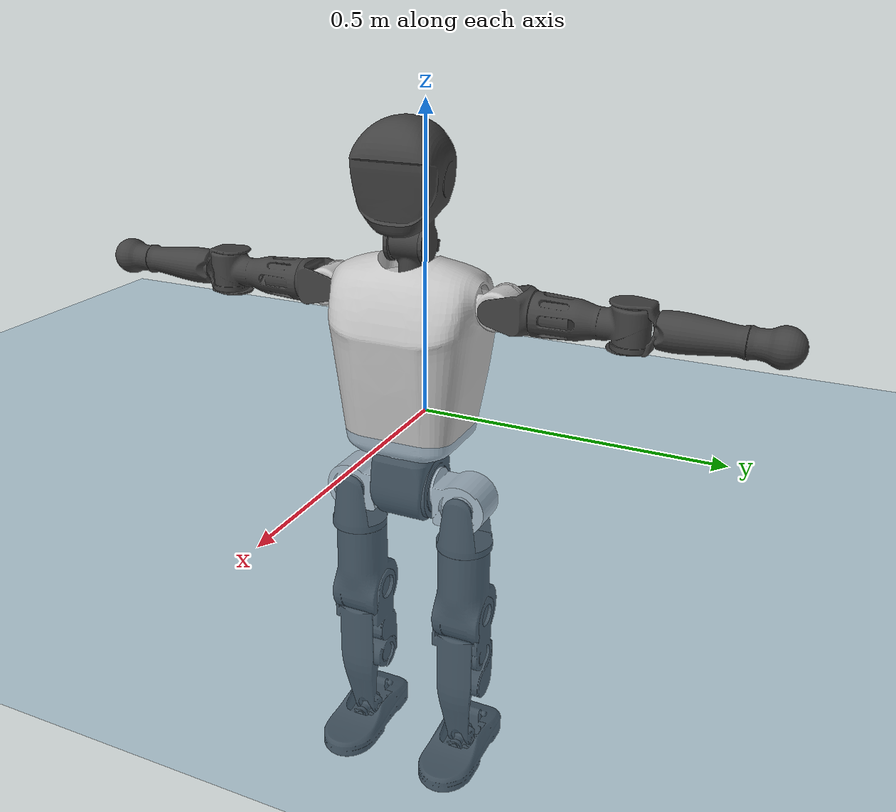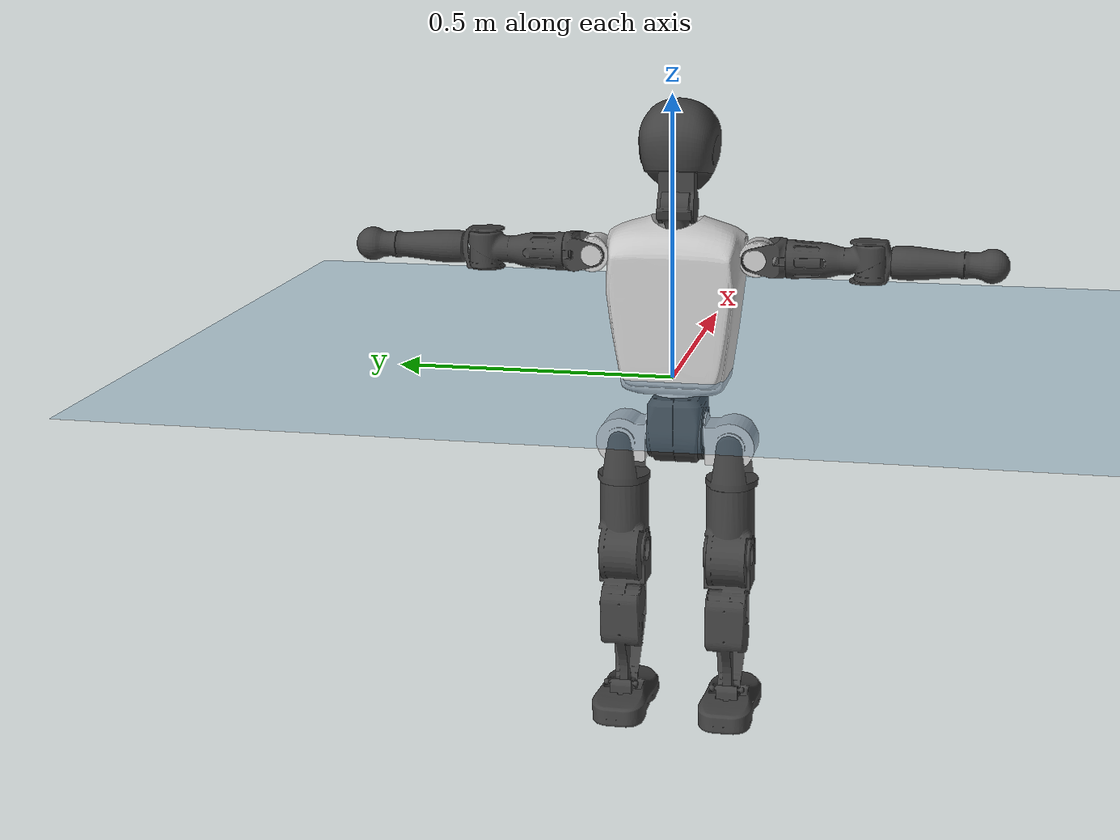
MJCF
<mujoco model="T1">
  <compiler angle="radian" assetdir="assets" balanceinertia="true" inertiafromgeom="false"/>

  <option timestep="0.005" density="1.2" viscosity="2e-05"/>

  <size nkey="1"/>

  <visual>
    <quality shadowsize="8192"/>
    <map shadowclip="0.5"/>
  </visual>

  <default>
    <default class="/">
      <joint armature="0.01" damping="0.01" frictionloss="0.1"/>
      <geom contype="0" conaffinity="0" group="1" solref="-1000 -80"/>
      <site size="0.01 0.005 0.005" group="5"/>
      <general forcelimited="true" biastype="affine" gainprm="25" biasprm="0 -25 -0.6"/>
      <default class="t1">
        <geom rgba="0.25 0.25 0.25 1"/>
        <default class="visual">
          <geom type="mesh" group="2"/>
        </default>
        <default class="collision">
          <geom group="3"/>
        </default>
        <default class="foot">
          <geom size="0.1115 0.05 0.015" type="box" condim="6" group="4" priority="1" solimp="0.015 1 0.015"/>
        </default>
        <default class="reward_collision_sphere">
          <geom group="5" rgba="1 0 0 1"/>
        </default>
      </default>
    </default>
  </default>

  <asset>
    <texture type="skybox" colorspace="auto" name="//unnamed_texture_0" builtin="gradient" rgb1="0.95 0.95 0.95" rgb2="0.95 0.95 0.95" width="100" height="600"/>
    <texture type="2d" colorspace="auto" name="texplane" builtin="checker" rgb1="0.345 0.575 0.748" rgb2="0.345 0.575 0.748" markrgb="1 1 1" width="512" height="512"/>
    <material name="MatPlane" class="/" texture="texplane" texuniform="true" texrepeat="2 2" specular="0.9"/>
    <mesh name="Trunk" class="/" file="Trunk.stl"/>
    <mesh name="H1" class="/" file="H1.stl"/>
    <mesh name="H2" class="/" file="H2.stl"/>
    <mesh name="AL1" class="/" file="AL1.stl"/>
    <mesh name="AL2" class="/" file="AL2.stl"/>
    <mesh name="AL3" class="/" file="AL3.stl"/>
    <mesh name="left_hand_link" class="/" file="left_hand_link.stl"/>
    <mesh name="AR1" class="/" file="AR1.stl"/>
    <mesh name="AR2" class="/" file="AR2.stl"/>
    <mesh name="AR3" class="/" file="AR3.stl"/>
    <mesh name="right_hand_link" class="/" file="right_hand_link.stl"/>
    <mesh name="Waist" class="/" file="Waist.stl"/>
    <mesh name="Hip_Pitch_Left" class="/" file="Hip_Pitch_Left.stl"/>
    <mesh name="Hip_Roll_Left" class="/" file="Hip_Roll_Left.stl"/>
    <mesh name="Hip_Yaw_Left" class="/" file="Hip_Yaw_Left.stl"/>
    <mesh name="Shank_Left" class="/" file="Shank_Left.stl"/>
    <mesh name="Ankle_Cross_Left" class="/" file="Ankle_Cross_Left.stl"/>
    <mesh name="left_foot_link" class="/" file="left_foot_link.stl"/>
    <mesh name="Hip_Pitch_Right" class="/" file="Hip_Pitch_Right.stl"/>
    <mesh name="Hip_Roll_Right" class="/" file="Hip_Roll_Right.stl"/>
    <mesh name="Hip_Yaw_Right" class="/" file="Hip_Yaw_Right.stl"/>
    <mesh name="Shank_Right" class="/" file="Shank_Right.stl"/>
    <mesh name="Ankle_Cross_Right" class="/" file="Ankle_Cross_Right.stl"/>
    <mesh name="right_foot_link" class="/" file="right_foot_link.stl"/>
  </asset>

  <worldbody>
    <geom name="floor" class="/" size="100 100 0.125" type="plane" group="0" material="MatPlane"/>
    <light name="toplight_shadow" class="/" pos="0 0 5" dir="0.0990148 0.0990148 -0.990148" type="directional" ambient="0.04 0.04 0.04" diffuse="0.55 0.55 0.55" specular="0.12 0.12 0.12"/>
    <light name="toplight_fill" class="/" pos="0 0 5" dir="0.0990148 0.0990148 -0.990148" type="directional" castshadow="false" ambient="0.04 0.04 0.04" diffuse="0.3 0.3 0.3" specular="0.08 0.08 0.08"/>
    <body name="trunk" childclass="t1" pos="0.000555941 0.000270826 0.0011263" quat="1 -0.000367915 2.32804e-05 0.000156714">
      <inertial pos="0.0434507 -0.00231822 0.101002" quat="0.999962 -0.000110432 -0.00869055 0.000924973" mass="8.68832" diaginertia="0.0323168 0.056558 0.0463612"/>
      <joint name="//unnamed_joint_0" type="free" armature="0" damping="0" frictionloss="0"/>
      <geom name="//unnamed_geom_1" class="visual" rgba="0.76 0.76 0.76 1" mesh="Trunk"/>
      <geom name="//unnamed_geom_2" class="collision" size="0.0678921 0.0905228 0.135784" pos="0.048572 0 0.116079" type="box"/>
      <geom name="//unnamed_geom_3" class="reward_collision_sphere" size="0.104101" pos="0.048572 0 0.0967323"/>
      <geom name="//unnamed_geom_4" class="reward_collision_sphere" size="0.0135784" pos="0.048572 0.0798004 0"/>
      <geom name="//unnamed_geom_5" class="reward_collision_sphere" size="0.0135784" pos="0.048572 -0.0798004 0"/>
      <geom name="//unnamed_geom_6" class="reward_collision_sphere" size="0.0135784" pos="0.048572 0.100455 0.174118"/>
      <geom name="//unnamed_geom_7" class="reward_collision_sphere" size="0.0135784" pos="0.048572 -0.100455 0.174118"/>
      <site name="imu" pos="-0.0128314 0.0130492 -0.0126704" size="0.00905228"/>
      <camera name="track" pos="0 -1.87766 0" quat="0.707107 0.707107 0 0" mode="trackcom"/>
      <camera name="ego_camera" pos="0.098763 0 0.406276" quat="-0.5 -0.5 0.5 0.5"/>
      <body name="H1" pos="0.0500905 0.000690496 0.235583" quat="0.999999 0.000542821 0.00107434 0.000492937">
        <inertial pos="-0.00102302 -0.00101073 0.0546201" quat="0.764517 -0.0151516 0.00128229 0.644424" mass="0.349723" diaginertia="8.44505e-05 0.000165444 0.000130849"/>
        <joint name="AAHead_yaw" pos="0 0 0" axis="-0.00172916 0.00210809 0.999996" range="-1.58343 1.56415" armature="0.0103331" damping="0" frictionloss="0.0895388"/>
        <geom name="//unnamed_geom_8" class="visual" mesh="H1"/>
        <body name="H2" pos="0.00212226 -0.00101333 0.0595091" quat="1 -3.86637e-06 -7.97605e-06 1.33226e-07">
          <inertial pos="0.00527913 0.00102006 0.0948737" quat="0.988543 0.10779 -0.0739917 -0.0754207" mass="0.472416" diaginertia="0.000708109 0.00138888 0.00146067"/>
          <joint name="Head_pitch" pos="0 0 0" axis="-0.0065068 -0.999973 -0.00347633" stiffness="0.000817097" range="-1.20709 0.337799" armature="0.00869443" damping="0.00262277" frictionloss="0.0910571"/>
          <geom name="//unnamed_geom_9" class="visual" mesh="H2"/>
          <geom name="//unnamed_geom_10" class="collision" size="0.0724182" pos="0.00809533 0 0.106405"/>
          <geom name="//unnamed_geom_11" class="reward_collision_sphere" size="0.0814705" pos="0.0161907 0 0.0967323"/>
        </body>
      </body>
      <body name="AL1" pos="0.045915 0.0998965 0.21097" quat="0.999999 -0.000518461 0.00119885 -0.000105501">
        <inertial pos="-0.000353215 0.0440116 -0.000160786" quat="0.502517 0.494953 -0.505251 0.497211" mass="0.396015" diaginertia="0.000480009 0.000953653 0.00025039"/>
        <joint name="Left_Shoulder_Pitch" pos="0 0 0" axis="0.000151214 1 -0.000939046" range="-3.3179 1.21534" armature="0.00951466" damping="0.0119072" frictionloss="0.0866146"/>
        <geom name="//unnamed_geom_12" class="visual" rgba="0.76 0.76 0.76 1" mesh="AL1"/>
        <body name="AL2" pos="0.000323631 0.0443935 -1.18567e-05" quat="1 2.34027e-05 -8.94065e-05 0.000145574">
          <inertial pos="0.00293164 0.0365748 0.00200434" quat="0.48656 0.512712 -0.489727 0.510444" mass="0.123856" diaginertia="0.000141978 0.000247882 0.000152019"/>
          <joint name="Left_Shoulder_Roll" pos="0 0 0" axis="-0.999999 -0.00167203 0.000148856" stiffness="0.000211036" range="-1.5211 1.79111" armature="0.00800015" damping="0.000462833" frictionloss="0.0904831"/>
          <geom name="//unnamed_geom_13" class="visual" mesh="AL2"/>
          <body name="AL3" pos="0.00238672 0.0571463 -0.00139231" quat="1 6.21178e-05 -3.82904e-06 0.000242442">
            <inertial pos="0.000810403 0.0802067 -0.000122545" quat="0.706326 0.707887 0.000189795 0.000143969" mass="0.768412" diaginertia="0.00444934 0.0095591 0.000514643"/>
            <joint name="Left_Elbow_Pitch" pos="0 0 0" axis="-0.0107007 -0.999914 -0.00754484" range="-2.22156 2.3071" armature="0.00785526" damping="0.00404763" frictionloss="0.0841733"/>
            <geom name="//unnamed_geom_14" class="visual" mesh="AL3"/>
            <geom name="//unnamed_geom_15" class="collision" size="0.0271568 0.0678921" pos="0 0.0469414 0" quat="0.707105 0.707108 0 0" type="cylinder"/>
            <geom name="//unnamed_geom_16" class="reward_collision_sphere" size="0.0325882"/>
            <body name="left_hand_link" pos="-0.000840825 0.140067 0.00216703" quat="1 3.59681e-05 0.000146796 -8.81891e-05">
              <inertial pos="-0.000759461 0.10232 0.000508231" quat="0.707839 0.706374 -0.000124161 -0.000275351" mass="0.241032" diaginertia="0.00288834 0.00604152 0.000180437"/>
              <joint name="Left_Elbow_Yaw" pos="0 0 0" axis="1.8476e-05 0.000134671 1" range="-2.43859 0.0110403" armature="0.0103051" damping="0.0153944" frictionloss="0.0881236"/>
              <geom name="//unnamed_geom_17" class="visual" mesh="left_hand_link"/>
              <geom name="//unnamed_geom_18" class="collision" size="0.0271568 0.0792074" pos="0 0.122048 0" quat="0.707105 0.707108 0 0" type="cylinder"/>
              <geom name="//unnamed_geom_19" class="reward_collision_sphere" size="0.0452614"/>
              <geom name="//unnamed_geom_20" class="reward_collision_sphere" size="0.031683" pos="0 0.103271 0"/>
              <geom name="//unnamed_geom_21" class="reward_collision_sphere" size="0.031683" pos="0 0.201848 0"/>
            </body>
          </body>
        </body>
      </body>
      <body name="AR1" pos="0.0440676 -0.0979417 0.212208" quat="1 5.01302e-06 0.000440788 -3.16037e-06">
        <inertial pos="-0.00343595 -0.0433099 0.00128686" quat="0.494668 0.494175 -0.506634 0.504397" mass="0.396121" diaginertia="0.000478446 0.000948789 0.00025751"/>
        <joint name="Right_Shoulder_Pitch" pos="0 0 0" axis="0.0014283 -0.999993 0.00349436" stiffness="0.00585396" range="-1.22354 3.31126" armature="0.00917517" damping="0.00791959" frictionloss="0.0843529"/>
        <geom name="//unnamed_geom_22" class="visual" rgba="0.76 0.76 0.76 1" mesh="AR1"/>
        <body name="AR2" pos="0.000431897 -0.0421019 -0.000109472" quat="1 0.000574464 1.48813e-05 0.000309523">
          <inertial pos="0.00202084 -0.0358729 0.000756895" quat="0.511518 0.488021 -0.511977 0.487919" mass="0.118171" diaginertia="0.000140334 0.000259607 0.00015054"/>
          <joint name="Right_Shoulder_Roll" pos="0 0 0" axis="-0.999956 -0.00824179 0.00447522" range="-1.73396 1.62381" armature="0.00836856" damping="0.0122059" frictionloss="0.0882742"/>
          <geom name="//unnamed_geom_23" class="visual" mesh="AR2"/>
          <body name="AR3" pos="-0.000324443 -0.0561288 -0.00171244" quat="1 -1.51166e-05 -1.28124e-05 -1.17893e-05">
            <inertial pos="-0.0002466 -0.0827574 0.00207226" quat="0.709198 0.704972 0.00184706 -0.00704601" mass="0.743821" diaginertia="0.00445297 0.00911778 0.000535443"/>
            <joint name="Right_Elbow_Pitch" pos="0 0 0" axis="0.000513693 1 0.000143213" range="-2.257 2.23832" armature="0.00917353" damping="0.0176427" frictionloss="0.0897677"/>
            <geom name="//unnamed_geom_24" class="visual" mesh="AR3"/>
            <geom name="//unnamed_geom_25" class="collision" size="0.0271568 0.0678921" pos="0 -0.0469414 0" quat="0.707105 0.707108 0 0" type="cylinder"/>
            <geom name="//unnamed_geom_26" class="reward_collision_sphere" size="0.0325882"/>
            <body name="right_hand_link" pos="8.77852e-05 -0.137536 0.000189777" quat="1 -1.56298e-05 1.30266e-05 2.63762e-05">
              <inertial pos="-0.000920935 -0.10198 -0.000769645" quat="0.706607 0.707605 -0.000789824 0.000569634" mass="0.24554" diaginertia="0.00280209 0.00593496 0.000179113"/>
              <joint name="Right_Elbow_Yaw" pos="0 0 0" axis="-0.000157668 0.000281039 1" range="-0.00804201 2.44107" armature="0.00890622" damping="0.00765241" frictionloss="0.0957435"/>
              <geom name="//unnamed_geom_27" class="visual" mesh="right_hand_link"/>
              <geom name="//unnamed_geom_28" class="collision" size="0.0271568 0.0792074" pos="0 -0.122048 0" quat="0.707105 0.707108 0 0" type="cylinder"/>
              <geom name="//unnamed_geom_29" class="reward_collision_sphere" size="0.0452614"/>
              <geom name="//unnamed_geom_30" class="reward_collision_sphere" size="0.031683" pos="0 -0.103271 0"/>
              <geom name="//unnamed_geom_31" class="reward_collision_sphere" size="0.031683" pos="0 -0.201848 0"/>
            </body>
          </body>
        </body>
      </body>
      <body name="Waist" pos="0.0527029 -0.00181593 -0.111615" quat="1 -0.000276024 0.000244121 0.000131169">
        <inertial pos="-0.00111214 0.000501167 0.00727342" quat="0.983757 0.000436625 -0.17949 0.00218652" mass="1.96187" diaginertia="0.00182542 0.00396079 0.00406089"/>
        <joint name="Waist" pos="0 0 0" axis="-0.00925813 -0.00715016 0.999932" stiffness="0.000621809" range="-1.59102 1.58861" armature="0.00910614" damping="0.0262434" frictionloss="0.091033"/>
        <geom name="//unnamed_geom_32" class="visual" mesh="Waist"/>
        <body name="Hip_Pitch_Left" pos="-0.00174914 0.100727 0.00101535" quat="0.999999 0.00109376 -0.000224848 -0.00106102">
          <inertial pos="-0.000874779 -0.00460099 -0.0183122" quat="0.974932 0.221905 0.0162796 2.79841e-05" mass="0.731173" diaginertia="0.000605596 0.00104294 0.00105992"/>
          <joint name="Left_Hip_Pitch" pos="0 0 0" axis="-0.00337057 0.999988 0.00349832" range="-1.77654 1.58143" armature="0.00818834" damping="0.00961451" frictionloss="0.102401"/>
          <geom name="//unnamed_geom_33" class="visual" rgba="0.76 0.76 0.76 1" mesh="Hip_Pitch_Left"/>
          <body name="Hip_Roll_Left" pos="0.00313282 0.000122303 -0.0222911" quat="1 -0.000181766 -0.000369081 -0.000900673">
            <inertial pos="0.00210804 0.00023059 -0.0544483" quat="0.707087 -0.00586423 -0.00675639 0.70707" mass="0.278489" diaginertia="0.00060352 0.0010976 0.000429935"/>
            <joint name="Left_Hip_Roll" pos="0 0 0" axis="-0.999993 0.00232701 0.0028568" range="-1.566 0.209816" armature="0.00959105" damping="0.0193211" frictionloss="0.0898735"/>
            <geom name="//unnamed_geom_34" class="visual" mesh="Hip_Roll_Left"/>
            <geom name="//unnamed_geom_35" class="reward_collision_sphere" size="0.0497875"/>
            <body name="Hip_Yaw_Left" pos="0.000324462 -0.000281196 -0.0791377" quat="1 -0.000220225 0.000193951 5.54075e-05">
              <inertial pos="-0.00463319 0.00208993 -0.0838956" quat="0.694004 -0.0360114 -0.0346496 0.718235" mass="1.61101" diaginertia="0.00900356 0.0185689 0.00219162"/>
              <joint name="Left_Hip_Yaw" pos="0 0 0" axis="-0.00215529 -0.00674907 -0.999975" range="-1.01594 0.999078" armature="0.00911928" damping="0.00981021" frictionloss="0.0953502"/>
              <geom name="//unnamed_geom_36" class="visual" mesh="Hip_Yaw_Left"/>
              <geom name="//unnamed_geom_37" class="collision" size="0.0452614 0.0724182" type="cylinder"/>
              <body name="Shank_Left" pos="-0.00893041 -0.00108175 -0.130651" quat="1 0.000789426 -0.000386761 8.73737e-05">
                <inertial pos="-0.00524309 -4.74883e-05 -0.120945" quat="0.99825 -0.0041081 -0.0191699 0.0557896" mass="1.31202" diaginertia="0.012199 0.0255961 0.00159128"/>
                <joint name="Left_Knee_Pitch" pos="0 0 0" axis="0.00193953 0.999989 0.00421223" range="-0.00451748 2.29628" armature="0.00984357" damping="0.00475094" frictionloss="0.0911147"/>
                <geom name="//unnamed_geom_38" class="visual" mesh="Shank_Left"/>
                <geom name="//unnamed_geom_39" class="collision" size="0.0452614 0.0678921" pos="0 0 -0.116079" type="cylinder"/>
                <geom name="//unnamed_geom_40" class="reward_collision_sphere" size="0.0588398"/>
                <body name="Ankle_Cross_Left" pos="-1.22102e-05 -0.00193255 -0.270568" quat="1 2.19911e-05 5.23703e-06 -4.96814e-05">
                  <inertial pos="-0.00287003 0.000629742 -0.00874768" quat="0.442195 0.554084 0.55429 0.436139" mass="0.0529561" diaginertia="1.01754e-05 1.84666e-05 9.4901e-06"/>
                  <joint name="Left_Ankle_Pitch" pos="0 0 0" axis="-0.00139009 0.999998 0.00156024" stiffness="0.00406282" range="-0.921641 0.401065" armature="0.00937367" damping="0" frictionloss="0.0936184"/>
                  <geom name="//unnamed_geom_41" class="visual" mesh="Ankle_Cross_Left"/>
                  <body name="left_foot_link" pos="-0.00146624 7.67042e-05 -0.014206" quat="0.999999 0.00014913 0.00133668 6.05361e-05">
                    <inertial pos="0.00100438 -0.00109159 -0.00846925" quat="0.00221084 0.619107 -0.00868049 0.785256" mass="0.522433" diaginertia="0.000972213 0.00180669 0.00197581"/>
                    <joint name="Left_Ankle_Roll" pos="0 0 0" axis="-0.999976 0.00681341 0.000867072" stiffness="0.00589206" range="-0.43885 0.492953" armature="0.00922747" damping="0.0112548" frictionloss="0.102308"/>
                    <geom name="//unnamed_geom_42" class="visual" mesh="left_foot_link"/>
                    <geom name="left_foot" class="foot" size="0.10546 0.0418411 0.0149677" pos="0.00809533 0 -0.0145098"/>
                    <geom name="//unnamed_geom_44" class="reward_collision_sphere" size="0.0470719" pos="0.00809533 0 -0.0145098"/>
                    <geom name="//unnamed_geom_45" class="reward_collision_sphere" size="0.0271568" pos="0.0769056 -0.0215931 -0.0145098"/>
                    <geom name="//unnamed_geom_46" class="reward_collision_sphere" size="0.0271568" pos="-0.0566673 -0.0215931 -0.0145098"/>
                    <site name="left_foot" class="foot" pos="0.00809533 0 -0.0145098" size="0.00905228"/>
                  </body>
                </body>
              </body>
            </body>
          </body>
        </body>
        <body name="Hip_Pitch_Right" pos="-2.18452e-05 -0.0992688 9.16118e-05" quat="1 1.51026e-05 1.90375e-05 2.68312e-05">
          <inertial pos="0.00118292 0.00701669 -0.0171629" quat="0.973565 -0.227322 0.0140366 -0.0172864" mass="0.737888" diaginertia="0.000607237 0.00103378 0.0010343"/>
          <joint name="Right_Hip_Pitch" pos="0 0 0" axis="0.000536744 -0.999999 0.00102214" stiffness="0.00168989" range="-1.56048 1.78891" armature="0.00881772" damping="0.00838245" frictionloss="0.0893237"/>
          <geom name="//unnamed_geom_47" class="visual" rgba="0.76 0.76 0.76 1" mesh="Hip_Pitch_Right"/>
          <body name="Hip_Roll_Right" pos="0.00140312 0.000559198 -0.0216963" quat="1 0.000191987 -8.89195e-05 -0.000110233">
            <inertial pos="0.0010353 0.000251502 -0.0519869" quat="0.70354 -0.00653742 -0.0124831 0.710516" mass="0.275332" diaginertia="0.000602247 0.00110002 0.000418046"/>
            <joint name="Right_Hip_Roll" pos="0 0 0" axis="-1 -0.000899712 -0.000162802" stiffness="0.00124449" range="-0.18558 1.57929" armature="0.00881535" damping="0.00830999" frictionloss="0.0889699"/>
            <geom name="//unnamed_geom_48" class="visual" mesh="Hip_Roll_Right"/>
            <geom name="//unnamed_geom_49" class="reward_collision_sphere" size="0.0497875"/>
            <body name="Hip_Yaw_Right" pos="-0.00187979 0.0021325 -0.0796472" quat="1 -0.000225302 -0.000194135 -0.000122564">
              <inertial pos="-0.00718509 -0.000835348 -0.089023" quat="0.711146 -0.0318896 -0.0251583 0.70187" mass="1.63561" diaginertia="0.00891604 0.0182685 0.0021718"/>
              <joint name="Right_Hip_Yaw" pos="0 0 0" axis="0.000846393 -0.00143805 -0.999999" range="-0.958969 0.990308" armature="0.00916133" damping="0.0103859" frictionloss="0.0899683"/>
              <geom name="//unnamed_geom_50" class="visual" mesh="Hip_Yaw_Right"/>
              <geom name="//unnamed_geom_51" class="collision" size="0.0452614 0.0724182" type="cylinder"/>
              <body name="Shank_Right" pos="-0.0111938 0.00104974 -0.128292" quat="1 -4.37368e-05 3.76072e-05 5.85781e-05">
                <inertial pos="-0.00220532 -0.00135418 -0.118341" quat="0.99897 0.00673418 -0.0306345 -0.0328037" mass="1.27125" diaginertia="0.0119095 0.0255352 0.0016172"/>
                <joint name="Right_Knee_Pitch" pos="0 0 0" axis="-0.000162567 -0.999999 -0.00166918" range="-2.349 -0.013051" armature="0.0094321" damping="0" frictionloss="0.0987892"/>
                <geom name="//unnamed_geom_52" class="visual" mesh="Shank_Right"/>
                <geom name="//unnamed_geom_53" class="collision" size="0.0452614 0.0678921" pos="0 0 -0.116079" type="cylinder"/>
                <geom name="//unnamed_geom_54" class="reward_collision_sphere" size="0.0588398"/>
                <body name="Ankle_Cross_Right" pos="0.000734622 -0.00341002 -0.270729" quat="0.999999 -0.000518797 -0.00122459 9.92722e-05">
                  <inertial pos="-0.00198304 0.000214436 -0.00734617" quat="0.442047 0.551051 0.552121 0.442831" mass="0.0545343" diaginertia="9.79102e-06 1.87859e-05 9.71823e-06"/>
                  <joint name="Right_Ankle_Pitch" pos="0 0 0" axis="-0.00127739 -0.999981 -0.0060741" range="-0.350491 0.921806" armature="0.00884745" damping="0.0166579" frictionloss="0.0906223"/>
                  <geom name="//unnamed_geom_55" class="visual" mesh="Ankle_Cross_Right"/>
                  <body name="right_foot_link" pos="0.000231562 -0.000953574 -0.0122619" quat="1 0.00072439 0.00062643 -5.23777e-05">
                    <inertial pos="-0.00181112 0.000311943 -0.00896615" quat="0.00255495 0.622294 -0.00378667 0.78277" mass="0.507953" diaginertia="0.000906777 0.00171158 0.00186991"/>
                    <joint name="Right_Ankle_Roll" pos="0 0 0" axis="-0.999994 -0.00123118 -0.00332832" range="-0.428517 0.438775" armature="0.00864231" damping="0.00525865" frictionloss="0.0859628"/>
                    <geom name="//unnamed_geom_56" class="visual" mesh="right_foot_link"/>
                    <geom name="right_foot" class="foot" size="0.102546 0.0433946 0.0138526" pos="0.00809533 0 -0.0145098"/>
                    <geom name="//unnamed_geom_58" class="reward_collision_sphere" size="0.0362091"/>
                    <geom name="//unnamed_geom_59" class="reward_collision_sphere" size="0.0271568" pos="0.00809533 0 -0.0145098"/>
                    <geom name="//unnamed_geom_60" class="reward_collision_sphere" size="0.0271568" pos="0.0769056 0.0215931 -0.0145098"/>
                    <geom name="//unnamed_geom_61" class="reward_collision_sphere" size="0.0271568" pos="-0.0566673 0.0215931 -0.0145098"/>
                    <site name="right_foot" class="foot" pos="0.00809533 0 -0.0145098" size="0.00905228"/>
                  </body>
                </body>
              </body>
            </body>
          </body>
        </body>
      </body>
    </body>
  </worldbody>

  <contact>
    <pair class="/" geom1="floor" geom2="left_foot" name="//unnamed_contact_0"/>
    <pair class="/" geom1="floor" geom2="right_foot" name="//unnamed_contact_1"/>
  </contact>

  <actuator>
    <general name="AAHead_yaw" class="/" joint="AAHead_yaw" forcerange="-6.57818 6.57818" gainprm="21.1038" biasprm="0 -21.1038 -0.532911"/>
    <general name="Head_pitch" class="/" joint="Head_pitch" forcerange="-6.08424 6.08424" gainprm="21.1038" biasprm="0 -21.1038 -0.532911"/>
    <general name="Left_Shoulder_Pitch" class="/" joint="Left_Shoulder_Pitch" forcerange="-16.1945 16.1945" gainprm="21.1038" biasprm="0 -21.1038 -0.532911"/>
    <general name="Left_Shoulder_Roll" class="/" joint="Left_Shoulder_Roll" forcerange="-16.0227 16.0227" gainprm="21.1038" biasprm="0 -21.1038 -0.532911"/>
    <general name="Left_Elbow_Pitch" class="/" joint="Left_Elbow_Pitch" forcerange="-14.736 14.736" gainprm="21.1038" biasprm="0 -21.1038 -0.532911"/>
    <general name="Left_Elbow_Yaw" class="/" joint="Left_Elbow_Yaw" forcerange="-17.8437 17.8437" gainprm="21.1038" biasprm="0 -21.1038 -0.532911"/>
    <general name="Right_Shoulder_Pitch" class="/" joint="Right_Shoulder_Pitch" forcerange="-17.9093 17.9093" gainprm="21.1038" biasprm="0 -21.1038 -0.532911"/>
    <general name="Right_Shoulder_Roll" class="/" joint="Right_Shoulder_Roll" forcerange="-16.6464 16.6464" gainprm="21.1038" biasprm="0 -21.1038 -0.532911"/>
    <general name="Right_Elbow_Pitch" class="/" joint="Right_Elbow_Pitch" forcerange="-16.3554 16.3554" gainprm="21.1038" biasprm="0 -21.1038 -0.532911"/>
    <general name="Right_Elbow_Yaw" class="/" joint="Right_Elbow_Yaw" forcerange="-16.0374 16.0374" gainprm="21.1038" biasprm="0 -21.1038 -0.532911"/>
    <general name="Waist" class="/" joint="Waist" forcerange="-26.6906 26.6906" gainprm="21.1038" biasprm="0 -21.1038 -0.532911"/>
    <general name="Left_Hip_Pitch" class="/" joint="Left_Hip_Pitch" forcerange="-41.6122 41.6122" gainprm="21.1038" biasprm="0 -21.1038 -0.532911"/>
    <general name="Left_Hip_Roll" class="/" joint="Left_Hip_Roll" forcerange="-29.6837 29.6837" gainprm="21.1038" biasprm="0 -21.1038 -0.532911"/>
    <general name="Left_Hip_Yaw" class="/" joint="Left_Hip_Yaw" forcerange="-24.5133 24.5133" gainprm="21.1038" biasprm="0 -21.1038 -0.532911"/>
    <general name="Left_Knee_Pitch" class="/" joint="Left_Knee_Pitch" forcerange="-48.7069 48.7069" gainprm="21.1038" biasprm="0 -21.1038 -0.532911"/>
    <general name="Left_Ankle_Pitch" class="/" joint="Left_Ankle_Pitch" forcerange="-17.9719 17.9719" gainprm="21.1038" biasprm="0 -21.1038 -0.532911"/>
    <general name="Left_Ankle_Roll" class="/" joint="Left_Ankle_Roll" forcerange="-13.5534 13.5534" gainprm="21.1038" biasprm="0 -21.1038 -0.532911"/>
    <general name="Right_Hip_Pitch" class="/" joint="Right_Hip_Pitch" forcerange="-39.2744 39.2744" gainprm="21.1038" biasprm="0 -21.1038 -0.532911"/>
    <general name="Right_Hip_Roll" class="/" joint="Right_Hip_Roll" forcerange="-27.3502 27.3502" gainprm="21.1038" biasprm="0 -21.1038 -0.532911"/>
    <general name="Right_Hip_Yaw" class="/" joint="Right_Hip_Yaw" forcerange="-27.4047 27.4047" gainprm="21.1038" biasprm="0 -21.1038 -0.532911"/>
    <general name="Right_Knee_Pitch" class="/" joint="Right_Knee_Pitch" forcerange="-53.827 53.827" gainprm="21.1038" biasprm="0 -21.1038 -0.532911"/>
    <general name="Right_Ankle_Pitch" class="/" joint="Right_Ankle_Pitch" forcerange="-16.6086 16.6086" gainprm="21.1038" biasprm="0 -21.1038 -0.532911"/>
    <general name="Right_Ankle_Roll" class="/" joint="Right_Ankle_Roll" forcerange="-13.5824 13.5824" gainprm="21.1038" biasprm="0 -21.1038 -0.532911"/>
  </actuator>

  <sensor>
    <gyro site="imu" name="imu_angular_velocity"/>
    <velocimeter site="imu" name="imu_linear_velocity"/>
    <framelinvel objtype="site" objname="left_foot" name="left_foot_global_linear_velocity"/>
    <framelinvel objtype="site" objname="right_foot" name="right_foot_global_linear_velocity"/>
  </sensor>

  <keyframe>
    <key name="home" qpos="0 0 0.6385 1 0 0 0 0 0 0 1.4 0 -0.4 0 -1.4 0 0.4 0 -0.4 0 0 0.8 -0.4 0 0.4 0 0 -0.8 0.4 0"/>
  </keyframe>
</mujoco>
